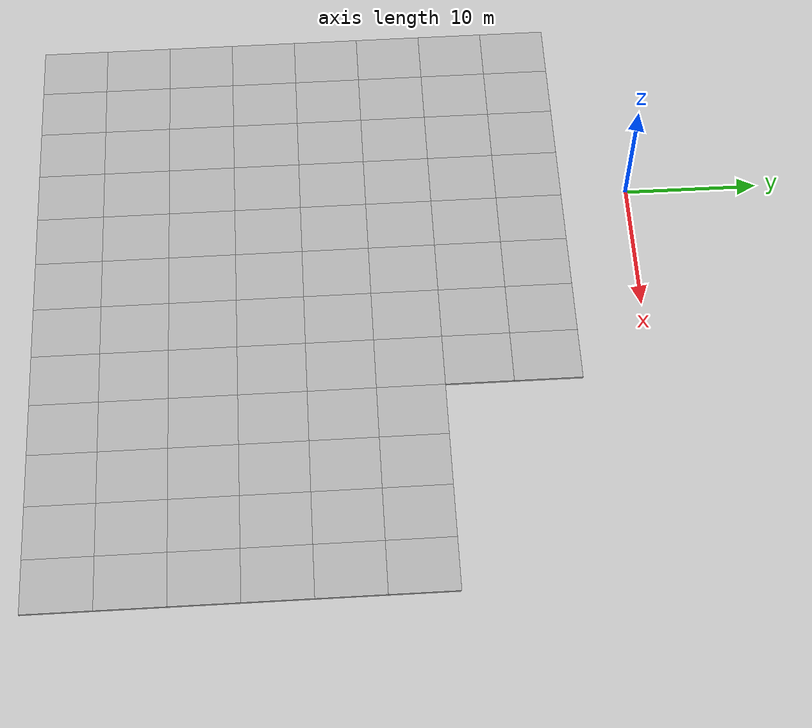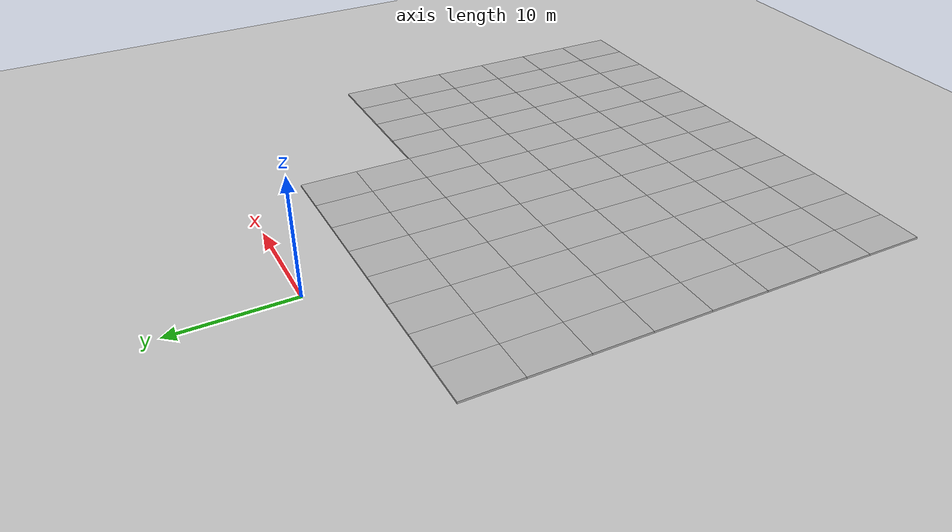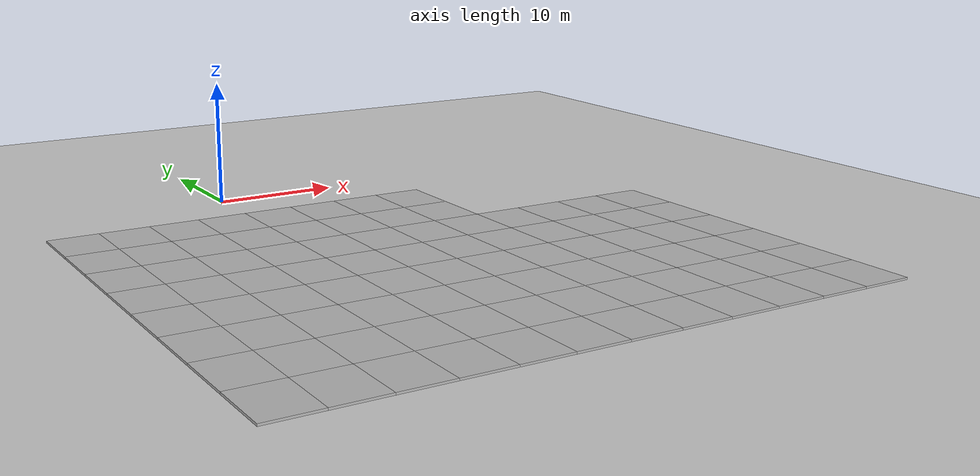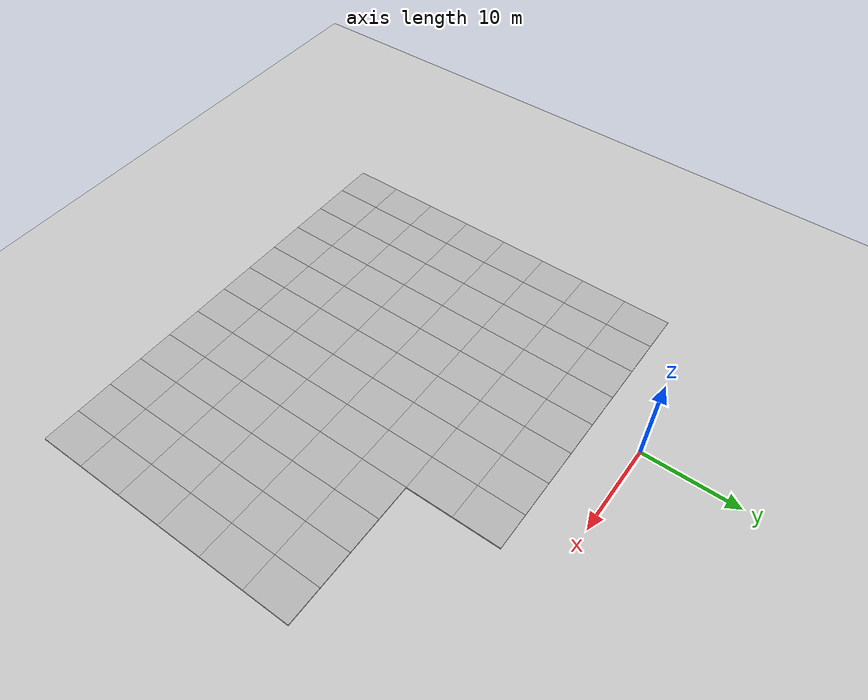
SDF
<sdf version="1.6">
 <world name="default">
  <model name="ground_plane">
   <static>1</static>
   <link name="link">
    <collision name="collision">
     <geometry><plane><normal>0 0 1</normal><size>100 100</size></plane></geometry>
     <surface>
      <contact><collide_bitmask>65535</collide_bitmask></contact>
      <friction><ode><mu>100</mu><mu2>50</mu2></ode></friction>
     </surface>
    </collision>
    <visual name="visual">
     <cast_shadows>0</cast_shadows>
     <geometry><plane><normal>0 0 1</normal><size>100 100</size></plane></geometry>
     <material>
      <script><uri>file://media/materials/scripts/gazebo.material</uri><name>Gazebo/Grey</name></script>
     </material>
    </visual>
   </link>
  </model>
  <model name="mud_box_clone_clone">
   <static>1</static>
   <link name="link">
    <collision name="collision"><geometry><box><size>8 10 0.2</size></box></geometry></collision>
    <visual name="visual_1">
     <pose>-2 2.5 0 0 -0 0</pose>
     <cast_shadows>0</cast_shadows>
     <geometry><box><size>4 5 0.2</size></box></geometry>
     <material>
      <script>
       <uri>model://mud_box/materials/scripts</uri>
       <uri>model://mud_box/materials/textures</uri>
       <name>vrc/mud</name>
      </script>
     </material>
    </visual>
    <visual name="visual_2">
     <pose>2 2.5 0 0 -0 0</pose>
     <cast_shadows>0</cast_shadows>
     <geometry><box><size>4 5 0.2</size></box></geometry>
     <material>
      <script>
       <uri>model://mud_box/materials/scripts</uri>
       <uri>model://mud_box/materials/textures</uri>
       <name>vrc/mud</name>
      </script>
     </material>
    </visual>
    <visual name="visual_3">
     <pose>2 -2.5 0 0 -0 0</pose>
     <cast_shadows>0</cast_shadows>
     <geometry><box><size>4 5 0.2</size></box></geometry>
     <material>
      <script>
       <uri>model://mud_box/materials/scripts</uri>
       <uri>model://mud_box/materials/textures</uri>
       <name>vrc/mud</name>
      </script>
     </material>
    </visual>
    <visual name="visual_4">
     <pose>-2 -2.5 0 0 -0 0</pose>
     <cast_shadows>0</cast_shadows>
     <geometry><box><size>4 5 0.2</size></box></geometry>
     <material>
      <script>
       <uri>model://mud_box/materials/scripts</uri>
       <uri>model://mud_box/materials/textures</uri>
       <name>vrc/mud</name>
      </script>
     </material>
    </visual>
   </link>
   <pose>-4 -10 0 0 -0 0</pose>
  </model>
  <model name="mud_box_clone_clone_0">
   <static>1</static>
   <link name="link">
    <collision name="collision"><geometry><box><size>8 10 0.2</size></box></geometry></collision>
    <visual name="visual_1">
     <pose>-2 2.5 0 0 -0 0</pose>
     <cast_shadows>0</cast_shadows>
     <geometry><box><size>4 5 0.2</size></box></geometry>
     <material>
      <script>
       <uri>model://mud_box/materials/scripts</uri>
       <uri>model://mud_box/materials/textures</uri>
       <name>vrc/mud</name>
      </script>
     </material>
    </visual>
    <visual name="visual_2">
     <pose>2 2.5 0 0 -0 0</pose>
     <cast_shadows>0</cast_shadows>
     <geometry><box><size>4 5 0.2</size></box></geometry>
     <material>
      <script>
       <uri>model://mud_box/materials/scripts</uri>
       <uri>model://mud_box/materials/textures</uri>
       <name>vrc/mud</name>
      </script>
     </material>
    </visual>
    <visual name="visual_3">
     <pose>2 -2.5 0 0 -0 0</pose>
     <cast_shadows>0</cast_shadows>
     <geometry><box><size>4 5 0.2</size></box></geometry>
     <material>
      <script>
       <uri>model://mud_box/materials/scripts</uri>
       <uri>model://mud_box/materials/textures</uri>
       <name>vrc/mud</name>
      </script>
     </material>
    </visual>
    <visual name="visual_4">
     <pose>-2 -2.5 0 0 -0 0</pose>
     <cast_shadows>0</cast_shadows>
     <geometry><box><size>4 5 0.2</size></box></geometry>
     <material>
      <script>
       <uri>model://mud_box/materials/scripts</uri>
       <uri>model://mud_box/materials/textures</uri>
       <name>vrc/mud</name>
      </script>
     </material>
    </visual>
   </link>
   <pose>4 -10 0 0 -0 0</pose>
  </model>
  <model name="mud_box_clone_clone_3">
   <static>1</static>
   <link name="link">
    <collision name="collision"><geometry><box><size>8 10 0.2</size></box></geometry></collision>
    <visual name="visual_1">
     <pose>-2 2.5 0 0 -0 0</pose>
     <cast_shadows>0</cast_shadows>
     <geometry><box><size>4 5 0.2</size></box></geometry>
     <material>
      <script>
       <uri>model://mud_box/materials/scripts</uri>
       <uri>model://mud_box/materials/textures</uri>
       <name>vrc/mud</name>
      </script>
     </material>
    </visual>
    <visual name="visual_2">
     <pose>2 2.5 0 0 -0 0</pose>
     <cast_shadows>0</cast_shadows>
     <geometry><box><size>4 5 0.2</size></box></geometry>
     <material>
      <script>
       <uri>model://mud_box/materials/scripts</uri>
       <uri>model://mud_box/materials/textures</uri>
       <name>vrc/mud</name>
      </script>
     </material>
    </visual>
    <visual name="visual_3">
     <pose>2 -2.5 0 0 -0 0</pose>
     <cast_shadows>0</cast_shadows>
     <geometry><box><size>4 5 0.2</size></box></geometry>
     <material>
      <script>
       <uri>model://mud_box/materials/scripts</uri>
       <uri>model://mud_box/materials/textures</uri>
       <name>vrc/mud</name>
      </script>
     </material>
    </visual>
    <visual name="visual_4">
     <pose>-2 -2.5 0 0 -0 0</pose>
     <cast_shadows>0</cast_shadows>
     <geometry><box><size>4 5 0.2</size></box></geometry>
     <material>
      <script>
       <uri>model://mud_box/materials/scripts</uri>
       <uri>model://mud_box/materials/textures</uri>
       <name>vrc/mud</name>
      </script>
     </material>
    </visual>
   </link>
   <pose>-12 -10 0 0 -0 0</pose>
  </model>
  <model name="mud_box_clone_clone_4">
   <static>1</static>
   <link name="link">
    <collision name="collision"><geometry><box><size>8 10 0.2</size></box></geometry></collision>
    <visual name="visual_1">
     <pose>-2 2.5 0 0 -0 0</pose>
     <cast_shadows>0</cast_shadows>
     <geometry><box><size>4 5 0.2</size></box></geometry>
     <material>
      <script>
       <uri>model://mud_box/materials/scripts</uri>
       <uri>model://mud_box/materials/textures</uri>
       <name>vrc/mud</name>
      </script>
     </material>
    </visual>
    <visual name="visual_2">
     <pose>2 2.5 0 0 -0 0</pose>
     <cast_shadows>0</cast_shadows>
     <geometry><box><size>4 5 0.2</size></box></geometry>
     <material>
      <script>
       <uri>model://mud_box/materials/scripts</uri>
       <uri>model://mud_box/materials/textures</uri>
       <name>vrc/mud</name>
      </script>
     </material>
    </visual>
    <visual name="visual_3">
     <pose>2 -2.5 0 0 -0 0</pose>
     <cast_shadows>0</cast_shadows>
     <geometry><box><size>4 5 0.2</size></box></geometry>
     <material>
      <script>
       <uri>model://mud_box/materials/scripts</uri>
       <uri>model://mud_box/materials/textures</uri>
       <name>vrc/mud</name>
      </script>
     </material>
    </visual>
    <visual name="visual_4">
     <pose>-2 -2.5 0 0 -0 0</pose>
     <cast_shadows>0</cast_shadows>
     <geometry><box><size>4 5 0.2</size></box></geometry>
     <material>
      <script>
       <uri>model://mud_box/materials/scripts</uri>
       <uri>model://mud_box/materials/textures</uri>
       <name>vrc/mud</name>
      </script>
     </material>
    </visual>
   </link>
   <pose>12 -10 0 0 -0 0</pose>
  </model>
  <model name="mud_box_clone_clone_4_clone">
   <static>1</static>
   <link name="link">
    <collision name="collision"><geometry><box><size>8 10 0.2</size></box></geometry></collision>
    <visual name="visual_1">
     <pose>-2 2.5 0 0 -0 0</pose>
     <cast_shadows>0</cast_shadows>
     <geometry><box><size>4 5 0.2</size></box></geometry>
     <material>
      <script>
       <uri>model://mud_box/materials/scripts</uri>
       <uri>model://mud_box/materials/textures</uri>
       <name>vrc/mud</name>
      </script>
     </material>
    </visual>
    <visual name="visual_2">
     <pose>2 2.5 0 0 -0 0</pose>
     <cast_shadows>0</cast_shadows>
     <geometry><box><size>4 5 0.2</size></box></geometry>
     <material>
      <script>
       <uri>model://mud_box/materials/scripts</uri>
       <uri>model://mud_box/materials/textures</uri>
       <name>vrc/mud</name>
      </script>
     </material>
    </visual>
    <visual name="visual_3">
     <pose>2 -2.5 0 0 -0 0</pose>
     <cast_shadows>0</cast_shadows>
     <geometry><box><size>4 5 0.2</size></box></geometry>
     <material>
      <script>
       <uri>model://mud_box/materials/scripts</uri>
       <uri>model://mud_box/materials/textures</uri>
       <name>vrc/mud</name>
      </script>
     </material>
    </visual>
    <visual name="visual_4">
     <pose>-2 -2.5 0 0 -0 0</pose>
     <cast_shadows>0</cast_shadows>
     <geometry><box><size>4 5 0.2</size></box></geometry>
     <material>
      <script>
       <uri>model://mud_box/materials/scripts</uri>
       <uri>model://mud_box/materials/textures</uri>
       <name>vrc/mud</name>
      </script>
     </material>
    </visual>
   </link>
   <pose>12 -20 0 0 -0 0</pose>
  </model>
  <model name="mud_box_clone_clone_4_clone_0">
   <static>1</static>
   <link name="link">
    <collision name="collision"><geometry><box><size>8 10 0.2</size></box></geometry></collision>
    <visual name="visual_1">
     <pose>-2 2.5 0 0 -0 0</pose>
     <cast_shadows>0</cast_shadows>
     <geometry><box><size>4 5 0.2</size></box></geometry>
     <material>
      <script>
       <uri>model://mud_box/materials/scripts</uri>
       <uri>model://mud_box/materials/textures</uri>
       <name>vrc/mud</name>
      </script>
     </material>
    </visual>
    <visual name="visual_2">
     <pose>2 2.5 0 0 -0 0</pose>
     <cast_shadows>0</cast_shadows>
     <geometry><box><size>4 5 0.2</size></box></geometry>
     <material>
      <script>
       <uri>model://mud_box/materials/scripts</uri>
       <uri>model://mud_box/materials/textures</uri>
       <name>vrc/mud</name>
      </script>
     </material>
    </visual>
    <visual name="visual_3">
     <pose>2 -2.5 0 0 -0 0</pose>
     <cast_shadows>0</cast_shadows>
     <geometry><box><size>4 5 0.2</size></box></geometry>
     <material>
      <script>
       <uri>model://mud_box/materials/scripts</uri>
       <uri>model://mud_box/materials/textures</uri>
       <name>vrc/mud</name>
      </script>
     </material>
    </visual>
    <visual name="visual_4">
     <pose>-2 -2.5 0 0 -0 0</pose>
     <cast_shadows>0</cast_shadows>
     <geometry><box><size>4 5 0.2</size></box></geometry>
     <material>
      <script>
       <uri>model://mud_box/materials/scripts</uri>
       <uri>model://mud_box/materials/textures</uri>
       <name>vrc/mud</name>
      </script>
     </material>
    </visual>
   </link>
   <pose>4 -20 0 0 -0 0</pose>
  </model>
  <model name="mud_box_clone_clone_4_clone_1">
   <static>1</static>
   <link name="link">
    <collision name="collision"><geometry><box><size>8 10 0.2</size></box></geometry></collision>
    <visual name="visual_1">
     <pose>-2 2.5 0 0 -0 0</pose>
     <cast_shadows>0</cast_shadows>
     <geometry><box><size>4 5 0.2</size></box></geometry>
     <material>
      <script>
       <uri>model://mud_box/materials/scripts</uri>
       <uri>model://mud_box/materials/textures</uri>
       <name>vrc/mud</name>
      </script>
     </material>
    </visual>
    <visual name="visual_2">
     <pose>2 2.5 0 0 -0 0</pose>
     <cast_shadows>0</cast_shadows>
     <geometry><box><size>4 5 0.2</size></box></geometry>
     <material>
      <script>
       <uri>model://mud_box/materials/scripts</uri>
       <uri>model://mud_box/materials/textures</uri>
       <name>vrc/mud</name>
      </script>
     </material>
    </visual>
    <visual name="visual_3">
     <pose>2 -2.5 0 0 -0 0</pose>
     <cast_shadows>0</cast_shadows>
     <geometry><box><size>4 5 0.2</size></box></geometry>
     <material>
      <script>
       <uri>model://mud_box/materials/scripts</uri>
       <uri>model://mud_box/materials/textures</uri>
       <name>vrc/mud</name>
      </script>
     </material>
    </visual>
    <visual name="visual_4">
     <pose>-2 -2.5 0 0 -0 0</pose>
     <cast_shadows>0</cast_shadows>
     <geometry><box><size>4 5 0.2</size></box></geometry>
     <material>
      <script>
       <uri>model://mud_box/materials/scripts</uri>
       <uri>model://mud_box/materials/textures</uri>
       <name>vrc/mud</name>
      </script>
     </material>
    </visual>
   </link>
   <pose>-4 -20 0 0 -0 0</pose>
  </model>
  <model name="mud_box_clone_clone_4_clone_2">
   <static>1</static>
   <link name="link">
    <collision name="collision"><geometry><box><size>8 10 0.2</size></box></geometry></collision>
    <visual name="visual_1">
     <pose>-2 2.5 0 0 -0 0</pose>
     <cast_shadows>0</cast_shadows>
     <geometry><box><size>4 5 0.2</size></box></geometry>
     <material>
      <script>
       <uri>model://mud_box/materials/scripts</uri>
       <uri>model://mud_box/materials/textures</uri>
       <name>vrc/mud</name>
      </script>
     </material>
    </visual>
    <visual name="visual_2">
     <pose>2 2.5 0 0 -0 0</pose>
     <cast_shadows>0</cast_shadows>
     <geometry><box><size>4 5 0.2</size></box></geometry>
     <material>
      <script>
       <uri>model://mud_box/materials/scripts</uri>
       <uri>model://mud_box/materials/textures</uri>
       <name>vrc/mud</name>
      </script>
     </material>
    </visual>
    <visual name="visual_3">
     <pose>2 -2.5 0 0 -0 0</pose>
     <cast_shadows>0</cast_shadows>
     <geometry><box><size>4 5 0.2</size></box></geometry>
     <material>
      <script>
       <uri>model://mud_box/materials/scripts</uri>
       <uri>model://mud_box/materials/textures</uri>
       <name>vrc/mud</name>
      </script>
     </material>
    </visual>
    <visual name="visual_4">
     <pose>-2 -2.5 0 0 -0 0</pose>
     <cast_shadows>0</cast_shadows>
     <geometry><box><size>4 5 0.2</size></box></geometry>
     <material>
      <script>
       <uri>model://mud_box/materials/scripts</uri>
       <uri>model://mud_box/materials/textures</uri>
       <name>vrc/mud</name>
      </script>
     </material>
    </visual>
   </link>
   <pose>-12 -20 0 0 -0 0</pose>
  </model>
  <model name="mud_box_clone_clone_4_clone_clone">
   <static>1</static>
   <link name="link">
    <collision name="collision"><geometry><box><size>8 10 0.2</size></box></geometry></collision>
    <visual name="visual_1">
     <pose>-2 2.5 0 0 -0 0</pose>
     <cast_shadows>0</cast_shadows>
     <geometry><box><size>4 5 0.2</size></box></geometry>
     <material>
      <script>
       <uri>model://mud_box/materials/scripts</uri>
       <uri>model://mud_box/materials/textures</uri>
       <name>vrc/mud</name>
      </script>
     </material>
    </visual>
    <visual name="visual_2">
     <pose>2 2.5 0 0 -0 0</pose>
     <cast_shadows>0</cast_shadows>
     <geometry><box><size>4 5 0.2</size></box></geometry>
     <material>
      <script>
       <uri>model://mud_box/materials/scripts</uri>
       <uri>model://mud_box/materials/textures</uri>
       <name>vrc/mud</name>
      </script>
     </material>
    </visual>
    <visual name="visual_3">
     <pose>2 -2.5 0 0 -0 0</pose>
     <cast_shadows>0</cast_shadows>
     <geometry><box><size>4 5 0.2</size></box></geometry>
     <material>
      <script>
       <uri>model://mud_box/materials/scripts</uri>
       <uri>model://mud_box/materials/textures</uri>
       <name>vrc/mud</name>
      </script>
     </material>
    </visual>
    <visual name="visual_4">
     <pose>-2 -2.5 0 0 -0 0</pose>
     <cast_shadows>0</cast_shadows>
     <geometry><box><size>4 5 0.2</size></box></geometry>
     <material>
      <script>
       <uri>model://mud_box/materials/scripts</uri>
       <uri>model://mud_box/materials/textures</uri>
       <name>vrc/mud</name>
      </script>
     </material>
    </visual>
   </link>
   <pose>20 -20 0 0 -0 0</pose>
  </model>
  <model name="mud_box_clone_clone_4_clone_clone_3">
   <static>1</static>
   <link name="link">
    <collision name="collision"><geometry><box><size>8 10 0.2</size></box></geometry></collision>
    <visual name="visual_1">
     <pose>-2 2.5 0 0 -0 0</pose>
     <cast_shadows>0</cast_shadows>
     <geometry><box><size>4 5 0.2</size></box></geometry>
     <material>
      <script>
       <uri>model://mud_box/materials/scripts</uri>
       <uri>model://mud_box/materials/textures</uri>
       <name>vrc/mud</name>
      </script>
     </material>
    </visual>
    <visual name="visual_2">
     <pose>2 2.5 0 0 -0 0</pose>
     <cast_shadows>0</cast_shadows>
     <geometry><box><size>4 5 0.2</size></box></geometry>
     <material>
      <script>
       <uri>model://mud_box/materials/scripts</uri>
       <uri>model://mud_box/materials/textures</uri>
       <name>vrc/mud</name>
      </script>
     </material>
    </visual>
    <visual name="visual_3">
     <pose>2 -2.5 0 0 -0 0</pose>
     <cast_shadows>0</cast_shadows>
     <geometry><box><size>4 5 0.2</size></box></geometry>
     <material>
      <script>
       <uri>model://mud_box/materials/scripts</uri>
       <uri>model://mud_box/materials/textures</uri>
       <name>vrc/mud</name>
      </script>
     </material>
    </visual>
    <visual name="visual_4">
     <pose>-2 -2.5 0 0 -0 0</pose>
     <cast_shadows>0</cast_shadows>
     <geometry><box><size>4 5 0.2</size></box></geometry>
     <material>
      <script>
       <uri>model://mud_box/materials/scripts</uri>
       <uri>model://mud_box/materials/textures</uri>
       <name>vrc/mud</name>
      </script>
     </material>
    </visual>
   </link>
   <pose>20 -30 0 0 -0 0</pose>
  </model>
  <model name="mud_box_clone_clone_4_clone_clone_3_clone">
   <static>1</static>
   <link name="link">
    <collision name="collision"><geometry><box><size>8 10 0.2</size></box></geometry></collision>
    <visual name="visual_1">
     <pose>-2 2.5 0 0 -0 0</pose>
     <cast_shadows>0</cast_shadows>
     <geometry><box><size>4 5 0.2</size></box></geometry>
     <material>
      <script>
       <uri>model://mud_box/materials/scripts</uri>
       <uri>model://mud_box/materials/textures</uri>
       <name>vrc/mud</name>
      </script>
     </material>
    </visual>
    <visual name="visual_2">
     <pose>2 2.5 0 0 -0 0</pose>
     <cast_shadows>0</cast_shadows>
     <geometry><box><size>4 5 0.2</size></box></geometry>
     <material>
      <script>
       <uri>model://mud_box/materials/scripts</uri>
       <uri>model://mud_box/materials/textures</uri>
       <name>vrc/mud</name>
      </script>
     </material>
    </visual>
    <visual name="visual_3">
     <pose>2 -2.5 0 0 -0 0</pose>
     <cast_shadows>0</cast_shadows>
     <geometry><box><size>4 5 0.2</size></box></geometry>
     <material>
      <script>
       <uri>model://mud_box/materials/scripts</uri>
       <uri>model://mud_box/materials/textures</uri>
       <name>vrc/mud</name>
      </script>
     </material>
    </visual>
    <visual name="visual_4">
     <pose>-2 -2.5 0 0 -0 0</pose>
     <cast_shadows>0</cast_shadows>
     <geometry><box><size>4 5 0.2</size></box></geometry>
     <material>
      <script>
       <uri>model://mud_box/materials/scripts</uri>
       <uri>model://mud_box/materials/textures</uri>
       <name>vrc/mud</name>
      </script>
     </material>
    </visual>
   </link>
   <pose>12 -30 0 0 -0 0</pose>
  </model>
  <model name="mud_box_clone_clone_4_clone_clone_3_clone_0">
   <static>1</static>
   <link name="link">
    <collision name="collision"><geometry><box><size>8 10 0.2</size></box></geometry></collision>
    <visual name="visual_1">
     <pose>-2 2.5 0 0 -0 0</pose>
     <cast_shadows>0</cast_shadows>
     <geometry><box><size>4 5 0.2</size></box></geometry>
     <material>
      <script>
       <uri>model://mud_box/materials/scripts</uri>
       <uri>model://mud_box/materials/textures</uri>
       <name>vrc/mud</name>
      </script>
     </material>
    </visual>
    <visual name="visual_2">
     <pose>2 2.5 0 0 -0 0</pose>
     <cast_shadows>0</cast_shadows>
     <geometry><box><size>4 5 0.2</size></box></geometry>
     <material>
      <script>
       <uri>model://mud_box/materials/scripts</uri>
       <uri>model://mud_box/materials/textures</uri>
       <name>vrc/mud</name>
      </script>
     </material>
    </visual>
    <visual name="visual_3">
     <pose>2 -2.5 0 0 -0 0</pose>
     <cast_shadows>0</cast_shadows>
     <geometry><box><size>4 5 0.2</size></box></geometry>
     <material>
      <script>
       <uri>model://mud_box/materials/scripts</uri>
       <uri>model://mud_box/materials/textures</uri>
       <name>vrc/mud</name>
      </script>
     </material>
    </visual>
    <visual name="visual_4">
     <pose>-2 -2.5 0 0 -0 0</pose>
     <cast_shadows>0</cast_shadows>
     <geometry><box><size>4 5 0.2</size></box></geometry>
     <material>
      <script>
       <uri>model://mud_box/materials/scripts</uri>
       <uri>model://mud_box/materials/textures</uri>
       <name>vrc/mud</name>
      </script>
     </material>
    </visual>
   </link>
   <pose>4 -30 0 0 -0 0</pose>
  </model>
  <model name="mud_box_clone_clone_4_clone_clone_3_clone_1">
   <static>1</static>
   <link name="link">
    <collision name="collision"><geometry><box><size>8 10 0.2</size></box></geometry></collision>
    <visual name="visual_1">
     <pose>-2 2.5 0 0 -0 0</pose>
     <cast_shadows>0</cast_shadows>
     <geometry><box><size>4 5 0.2</size></box></geometry>
     <material>
      <script>
       <uri>model://mud_box/materials/scripts</uri>
       <uri>model://mud_box/materials/textures</uri>
       <name>vrc/mud</name>
      </script>
     </material>
    </visual>
    <visual name="visual_2">
     <pose>2 2.5 0 0 -0 0</pose>
     <cast_shadows>0</cast_shadows>
     <geometry><box><size>4 5 0.2</size></box></geometry>
     <material>
      <script>
       <uri>model://mud_box/materials/scripts</uri>
       <uri>model://mud_box/materials/textures</uri>
       <name>vrc/mud</name>
      </script>
     </material>
    </visual>
    <visual name="visual_3">
     <pose>2 -2.5 0 0 -0 0</pose>
     <cast_shadows>0</cast_shadows>
     <geometry><box><size>4 5 0.2</size></box></geometry>
     <material>
      <script>
       <uri>model://mud_box/materials/scripts</uri>
       <uri>model://mud_box/materials/textures</uri>
       <name>vrc/mud</name>
      </script>
     </material>
    </visual>
    <visual name="visual_4">
     <pose>-2 -2.5 0 0 -0 0</pose>
     <cast_shadows>0</cast_shadows>
     <geometry><box><size>4 5 0.2</size></box></geometry>
     <material>
      <script>
       <uri>model://mud_box/materials/scripts</uri>
       <uri>model://mud_box/materials/textures</uri>
       <name>vrc/mud</name>
      </script>
     </material>
    </visual>
   </link>
   <pose>-4 -30 0 0 -0 0</pose>
  </model>
  <model name="mud_box_clone_clone_4_clone_clone_3_clone_2">
   <static>1</static>
   <link name="link">
    <collision name="collision"><geometry><box><size>8 10 0.2</size></box></geometry></collision>
    <visual name="visual_1">
     <pose>-2 2.5 0 0 -0 0</pose>
     <cast_shadows>0</cast_shadows>
     <geometry><box><size>4 5 0.2</size></box></geometry>
     <material>
      <script>
       <uri>model://mud_box/materials/scripts</uri>
       <uri>model://mud_box/materials/textures</uri>
       <name>vrc/mud</name>
      </script>
     </material>
    </visual>
    <visual name="visual_2">
     <pose>2 2.5 0 0 -0 0</pose>
     <cast_shadows>0</cast_shadows>
     <geometry><box><size>4 5 0.2</size></box></geometry>
     <material>
      <script>
       <uri>model://mud_box/materials/scripts</uri>
       <uri>model://mud_box/materials/textures</uri>
       <name>vrc/mud</name>
      </script>
     </material>
    </visual>
    <visual name="visual_3">
     <pose>2 -2.5 0 0 -0 0</pose>
     <cast_shadows>0</cast_shadows>
     <geometry><box><size>4 5 0.2</size></box></geometry>
     <material>
      <script>
       <uri>model://mud_box/materials/scripts</uri>
       <uri>model://mud_box/materials/textures</uri>
       <name>vrc/mud</name>
      </script>
     </material>
    </visual>
    <visual name="visual_4">
     <pose>-2 -2.5 0 0 -0 0</pose>
     <cast_shadows>0</cast_shadows>
     <geometry><box><size>4 5 0.2</size></box></geometry>
     <material>
      <script>
       <uri>model://mud_box/materials/scripts</uri>
       <uri>model://mud_box/materials/textures</uri>
       <name>vrc/mud</name>
      </script>
     </material>
    </visual>
   </link>
   <pose>-12 -30 0 0 -0 0</pose>
  </model>
  <model name="mud_box_clone_clone_4_clone_clone_3_clone_3">
   <static>1</static>
   <link name="link">
    <collision name="collision"><geometry><box><size>8 10 0.2</size></box></geometry></collision>
    <visual name="visual_1">
     <pose>-2 2.5 0 0 -0 0</pose>
     <cast_shadows>0</cast_shadows>
     <geometry><box><size>4 5 0.2</size></box></geometry>
     <material>
      <script>
       <uri>model://mud_box/materials/scripts</uri>
       <uri>model://mud_box/materials/textures</uri>
       <name>vrc/mud</name>
      </script>
     </material>
    </visual>
    <visual name="visual_2">
     <pose>2 2.5 0 0 -0 0</pose>
     <cast_shadows>0</cast_shadows>
     <geometry><box><size>4 5 0.2</size></box></geometry>
     <material>
      <script>
       <uri>model://mud_box/materials/scripts</uri>
       <uri>model://mud_box/materials/textures</uri>
       <name>vrc/mud</name>
      </script>
     </material>
    </visual>
    <visual name="visual_3">
     <pose>2 -2.5 0 0 -0 0</pose>
     <cast_shadows>0</cast_shadows>
     <geometry><box><size>4 5 0.2</size></box></geometry>
     <material>
      <script>
       <uri>model://mud_box/materials/scripts</uri>
       <uri>model://mud_box/materials/textures</uri>
       <name>vrc/mud</name>
      </script>
     </material>
    </visual>
    <visual name="visual_4">
     <pose>-2 -2.5 0 0 -0 0</pose>
     <cast_shadows>0</cast_shadows>
     <geometry><box><size>4 5 0.2</size></box></geometry>
     <material>
      <script>
       <uri>model://mud_box/materials/scripts</uri>
       <uri>model://mud_box/materials/textures</uri>
       <name>vrc/mud</name>
      </script>
     </material>
    </visual>
   </link>
   <pose>28 -30 0 0 -0 0</pose>
  </model>
  <model name="mud_box_clone_clone_4_clone_clone_3_clone_4">
   <static>1</static>
   <link name="link">
    <collision name="collision"><geometry><box><size>8 10 0.2</size></box></geometry></collision>
    <visual name="visual_1">
     <pose>-2 2.5 0 0 -0 0</pose>
     <cast_shadows>0</cast_shadows>
     <geometry><box><size>4 5 0.2</size></box></geometry>
     <material>
      <script>
       <uri>model://mud_box/materials/scripts</uri>
       <uri>model://mud_box/materials/textures</uri>
       <name>vrc/mud</name>
      </script>
     </material>
    </visual>
    <visual name="visual_2">
     <pose>2 2.5 0 0 -0 0</pose>
     <cast_shadows>0</cast_shadows>
     <geometry><box><size>4 5 0.2</size></box></geometry>
     <material>
      <script>
       <uri>model://mud_box/materials/scripts</uri>
       <uri>model://mud_box/materials/textures</uri>
       <name>vrc/mud</name>
      </script>
     </material>
    </visual>
    <visual name="visual_3">
     <pose>2 -2.5 0 0 -0 0</pose>
     <cast_shadows>0</cast_shadows>
     <geometry><box><size>4 5 0.2</size></box></geometry>
     <material>
      <script>
       <uri>model://mud_box/materials/scripts</uri>
       <uri>model://mud_box/materials/textures</uri>
       <name>vrc/mud</name>
      </script>
     </material>
    </visual>
    <visual name="visual_4">
     <pose>-2 -2.5 0 0 -0 0</pose>
     <cast_shadows>0</cast_shadows>
     <geometry><box><size>4 5 0.2</size></box></geometry>
     <material>
      <script>
       <uri>model://mud_box/materials/scripts</uri>
       <uri>model://mud_box/materials/textures</uri>
       <name>vrc/mud</name>
      </script>
     </material>
    </visual>
   </link>
   <pose>28 -20 0 0 -0 0</pose>
  </model>
  <model name="mud_box_clone_clone_4_clone_clone_3_clone_3_clone">
   <static>1</static>
   <link name="link">
    <collision name="collision"><geometry><box><size>8 10 0.2</size></box></geometry></collision>
    <visual name="visual_1">
     <pose>-2 2.5 0 0 -0 0</pose>
     <cast_shadows>0</cast_shadows>
     <geometry><box><size>4 5 0.2</size></box></geometry>
     <material>
      <script>
       <uri>model://mud_box/materials/scripts</uri>
       <uri>model://mud_box/materials/textures</uri>
       <name>vrc/mud</name>
      </script>
     </material>
    </visual>
    <visual name="visual_2">
     <pose>2 2.5 0 0 -0 0</pose>
     <cast_shadows>0</cast_shadows>
     <geometry><box><size>4 5 0.2</size></box></geometry>
     <material>
      <script>
       <uri>model://mud_box/materials/scripts</uri>
       <uri>model://mud_box/materials/textures</uri>
       <name>vrc/mud</name>
      </script>
     </material>
    </visual>
    <visual name="visual_3">
     <pose>2 -2.5 0 0 -0 0</pose>
     <cast_shadows>0</cast_shadows>
     <geometry><box><size>4 5 0.2</size></box></geometry>
     <material>
      <script>
       <uri>model://mud_box/materials/scripts</uri>
       <uri>model://mud_box/materials/textures</uri>
       <name>vrc/mud</name>
      </script>
     </material>
    </visual>
    <visual name="visual_4">
     <pose>-2 -2.5 0 0 -0 0</pose>
     <cast_shadows>0</cast_shadows>
     <geometry><box><size>4 5 0.2</size></box></geometry>
     <material>
      <script>
       <uri>model://mud_box/materials/scripts</uri>
       <uri>model://mud_box/materials/textures</uri>
       <name>vrc/mud</name>
      </script>
     </material>
    </visual>
   </link>
   <pose>28 -40 0 0 -0 0</pose>
  </model>
  <model name="mud_box_clone_clone_4_clone_clone_3_clone_3_clone_0">
   <static>1</static>
   <link name="link">
    <collision name="collision"><geometry><box><size>8 10 0.2</size></box></geometry></collision>
    <visual name="visual_1">
     <pose>-2 2.5 0 0 -0 0</pose>
     <cast_shadows>0</cast_shadows>
     <geometry><box><size>4 5 0.2</size></box></geometry>
     <material>
      <script>
       <uri>model://mud_box/materials/scripts</uri>
       <uri>model://mud_box/materials/textures</uri>
       <name>vrc/mud</name>
      </script>
     </material>
    </visual>
    <visual name="visual_2">
     <pose>2 2.5 0 0 -0 0</pose>
     <cast_shadows>0</cast_shadows>
     <geometry><box><size>4 5 0.2</size></box></geometry>
     <material>
      <script>
       <uri>model://mud_box/materials/scripts</uri>
       <uri>model://mud_box/materials/textures</uri>
       <name>vrc/mud</name>
      </script>
     </material>
    </visual>
    <visual name="visual_3">
     <pose>2 -2.5 0 0 -0 0</pose>
     <cast_shadows>0</cast_shadows>
     <geometry><box><size>4 5 0.2</size></box></geometry>
     <material>
      <script>
       <uri>model://mud_box/materials/scripts</uri>
       <uri>model://mud_box/materials/textures</uri>
       <name>vrc/mud</name>
      </script>
     </material>
    </visual>
    <visual name="visual_4">
     <pose>-2 -2.5 0 0 -0 0</pose>
     <cast_shadows>0</cast_shadows>
     <geometry><box><size>4 5 0.2</size></box></geometry>
     <material>
      <script>
       <uri>model://mud_box/materials/scripts</uri>
       <uri>model://mud_box/materials/textures</uri>
       <name>vrc/mud</name>
      </script>
     </material>
    </visual>
   </link>
   <pose>20 -40 0 0 -0 0</pose>
  </model>
  <model name="mud_box_clone_clone_4_clone_clone_3_clone_3_clone_2">
   <static>1</static>
   <link name="link">
    <collision name="collision"><geometry><box><size>8 10 0.2</size></box></geometry></collision>
    <visual name="visual_1">
     <pose>-2 2.5 0 0 -0 0</pose>
     <cast_shadows>0</cast_shadows>
     <geometry><box><size>4 5 0.2</size></box></geometry>
     <material>
      <script>
       <uri>model://mud_box/materials/scripts</uri>
       <uri>model://mud_box/materials/textures</uri>
       <name>vrc/mud</name>
      </script>
     </material>
    </visual>
    <visual name="visual_2">
     <pose>2 2.5 0 0 -0 0</pose>
     <cast_shadows>0</cast_shadows>
     <geometry><box><size>4 5 0.2</size></box></geometry>
     <material>
      <script>
       <uri>model://mud_box/materials/scripts</uri>
       <uri>model://mud_box/materials/textures</uri>
       <name>vrc/mud</name>
      </script>
     </material>
    </visual>
    <visual name="visual_3">
     <pose>2 -2.5 0 0 -0 0</pose>
     <cast_shadows>0</cast_shadows>
     <geometry><box><size>4 5 0.2</size></box></geometry>
     <material>
      <script>
       <uri>model://mud_box/materials/scripts</uri>
       <uri>model://mud_box/materials/textures</uri>
       <name>vrc/mud</name>
      </script>
     </material>
    </visual>
    <visual name="visual_4">
     <pose>-2 -2.5 0 0 -0 0</pose>
     <cast_shadows>0</cast_shadows>
     <geometry><box><size>4 5 0.2</size></box></geometry>
     <material>
      <script>
       <uri>model://mud_box/materials/scripts</uri>
       <uri>model://mud_box/materials/textures</uri>
       <name>vrc/mud</name>
      </script>
     </material>
    </visual>
   </link>
   <pose>12 -40 0 0 -0 0</pose>
  </model>
  <model name="mud_box_clone_clone_4_clone_clone_3_clone_3_clone_3">
   <static>1</static>
   <link name="link">
    <collision name="collision"><geometry><box><size>8 10 0.2</size></box></geometry></collision>
    <visual name="visual_1">
     <pose>-2 2.5 0 0 -0 0</pose>
     <cast_shadows>0</cast_shadows>
     <geometry><box><size>4 5 0.2</size></box></geometry>
     <material>
      <script>
       <uri>model://mud_box/materials/scripts</uri>
       <uri>model://mud_box/materials/textures</uri>
       <name>vrc/mud</name>
      </script>
     </material>
    </visual>
    <visual name="visual_2">
     <pose>2 2.5 0 0 -0 0</pose>
     <cast_shadows>0</cast_shadows>
     <geometry><box><size>4 5 0.2</size></box></geometry>
     <material>
      <script>
       <uri>model://mud_box/materials/scripts</uri>
       <uri>model://mud_box/materials/textures</uri>
       <name>vrc/mud</name>
      </script>
     </material>
    </visual>
    <visual name="visual_3">
     <pose>2 -2.5 0 0 -0 0</pose>
     <cast_shadows>0</cast_shadows>
     <geometry><box><size>4 5 0.2</size></box></geometry>
     <material>
      <script>
       <uri>model://mud_box/materials/scripts</uri>
       <uri>model://mud_box/materials/textures</uri>
       <name>vrc/mud</name>
      </script>
     </material>
    </visual>
    <visual name="visual_4">
     <pose>-2 -2.5 0 0 -0 0</pose>
     <cast_shadows>0</cast_shadows>
     <geometry><box><size>4 5 0.2</size></box></geometry>
     <material>
      <script>
       <uri>model://mud_box/materials/scripts</uri>
       <uri>model://mud_box/materials/textures</uri>
       <name>vrc/mud</name>
      </script>
     </material>
    </visual>
   </link>
   <pose>4 -40 0 0 -0 0</pose>
  </model>
  <model name="mud_box_clone_clone_4_clone_clone_3_clone_3_clone_4">
   <static>1</static>
   <link name="link">
    <collision name="collision"><geometry><box><size>8 10 0.2</size></box></geometry></collision>
    <visual name="visual_1">
     <pose>-2 2.5 0 0 -0 0</pose>
     <cast_shadows>0</cast_shadows>
     <geometry><box><size>4 5 0.2</size></box></geometry>
     <material>
      <script>
       <uri>model://mud_box/materials/scripts</uri>
       <uri>model://mud_box/materials/textures</uri>
       <name>vrc/mud</name>
      </script>
     </material>
    </visual>
    <visual name="visual_2">
     <pose>2 2.5 0 0 -0 0</pose>
     <cast_shadows>0</cast_shadows>
     <geometry><box><size>4 5 0.2</size></box></geometry>
     <material>
      <script>
       <uri>model://mud_box/materials/scripts</uri>
       <uri>model://mud_box/materials/textures</uri>
       <name>vrc/mud</name>
      </script>
     </material>
    </visual>
    <visual name="visual_3">
     <pose>2 -2.5 0 0 -0 0</pose>
     <cast_shadows>0</cast_shadows>
     <geometry><box><size>4 5 0.2</size></box></geometry>
     <material>
      <script>
       <uri>model://mud_box/materials/scripts</uri>
       <uri>model://mud_box/materials/textures</uri>
       <name>vrc/mud</name>
      </script>
     </material>
    </visual>
    <visual name="visual_4">
     <pose>-2 -2.5 0 0 -0 0</pose>
     <cast_shadows>0</cast_shadows>
     <geometry><box><size>4 5 0.2</size></box></geometry>
     <material>
      <script>
       <uri>model://mud_box/materials/scripts</uri>
       <uri>model://mud_box/materials/textures</uri>
       <name>vrc/mud</name>
      </script>
     </material>
    </visual>
   </link>
   <pose>-4 -40 0 0 -0 0</pose>
  </model>
  <model name="mud_box_clone_clone_4_clone_clone_3_clone_3_clone_5">
   <static>1</static>
   <link name="link">
    <collision name="collision"><geometry><box><size>8 10 0.2</size></box></geometry></collision>
    <visual name="visual_1">
     <pose>-2 2.5 0 0 -0 0</pose>
     <cast_shadows>0</cast_shadows>
     <geometry><box><size>4 5 0.2</size></box></geometry>
     <material>
      <script>
       <uri>model://mud_box/materials/scripts</uri>
       <uri>model://mud_box/materials/textures</uri>
       <name>vrc/mud</name>
      </script>
     </material>
    </visual>
    <visual name="visual_2">
     <pose>2 2.5 0 0 -0 0</pose>
     <cast_shadows>0</cast_shadows>
     <geometry><box><size>4 5 0.2</size></box></geometry>
     <material>
      <script>
       <uri>model://mud_box/materials/scripts</uri>
       <uri>model://mud_box/materials/textures</uri>
       <name>vrc/mud</name>
      </script>
     </material>
    </visual>
    <visual name="visual_3">
     <pose>2 -2.5 0 0 -0 0</pose>
     <cast_shadows>0</cast_shadows>
     <geometry><box><size>4 5 0.2</size></box></geometry>
     <material>
      <script>
       <uri>model://mud_box/materials/scripts</uri>
       <uri>model://mud_box/materials/textures</uri>
       <name>vrc/mud</name>
      </script>
     </material>
    </visual>
    <visual name="visual_4">
     <pose>-2 -2.5 0 0 -0 0</pose>
     <cast_shadows>0</cast_shadows>
     <geometry><box><size>4 5 0.2</size></box></geometry>
     <material>
      <script>
       <uri>model://mud_box/materials/scripts</uri>
       <uri>model://mud_box/materials/textures</uri>
       <name>vrc/mud</name>
      </script>
     </material>
    </visual>
   </link>
   <pose>-12 -40 0 0 -0 0</pose>
  </model>
 </world>
</sdf>
